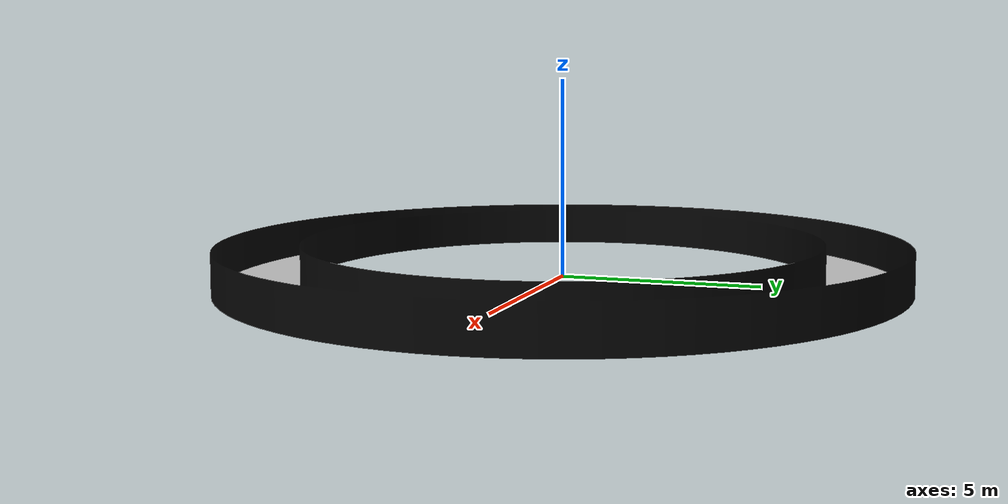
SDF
<?xml version="1.0"?>
<sdf version="1.9">
  <model name="track_model">
    <static>true</static>
    <link name="track_link">
      <visual name="track_visual">
        <geometry>
          <mesh>
            <uri>model://track_model/meshes/track_visual.dae</uri>
          </mesh>
        </geometry>
      </visual>
      <collision name="track_collision">
        <geometry>
          <mesh>
            <uri>model://track_model/meshes/track_collision.stl</uri>
          </mesh>
        </geometry>
      </collision>
    </link>
  </model>
</sdf>
